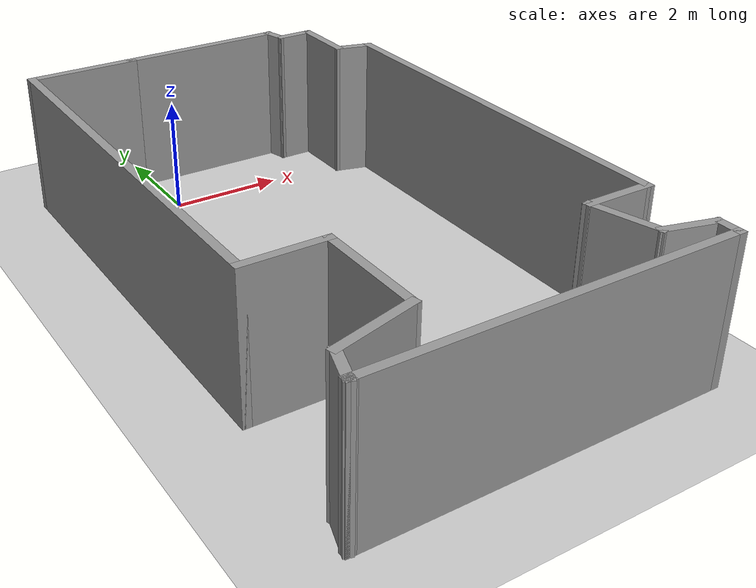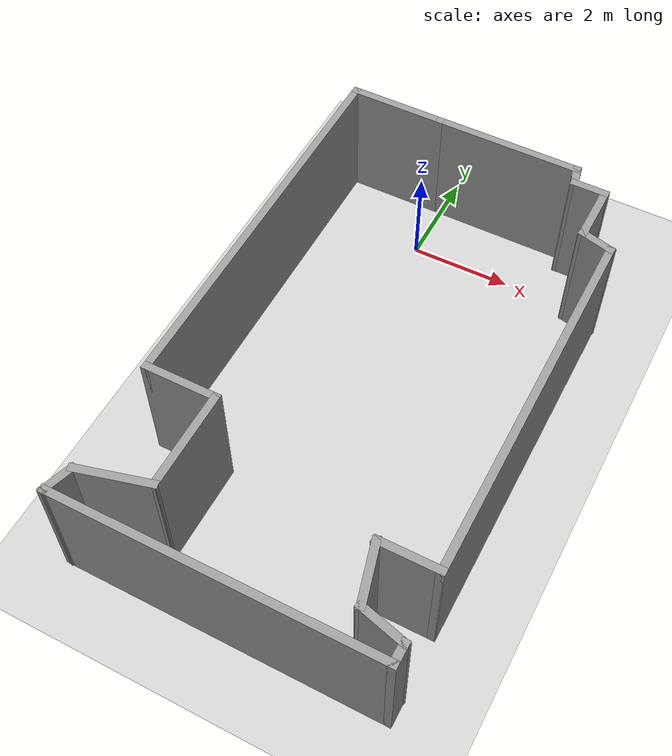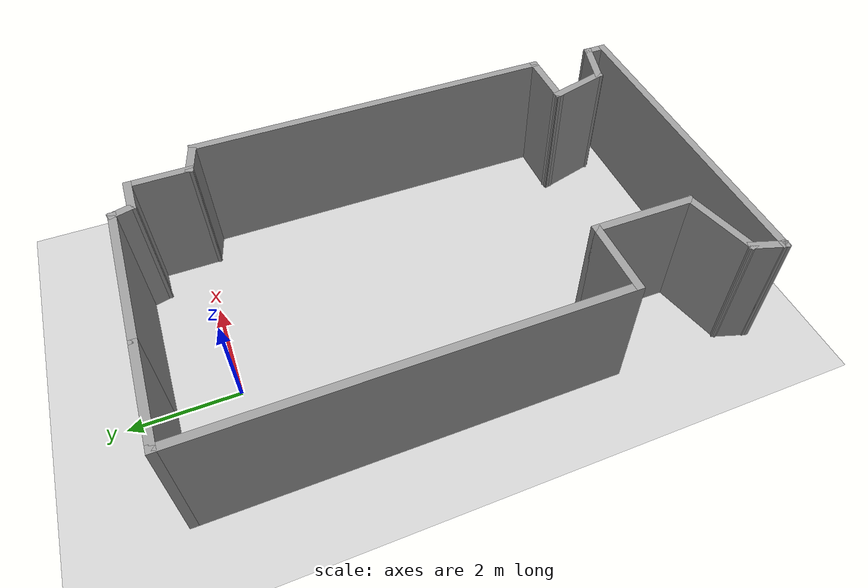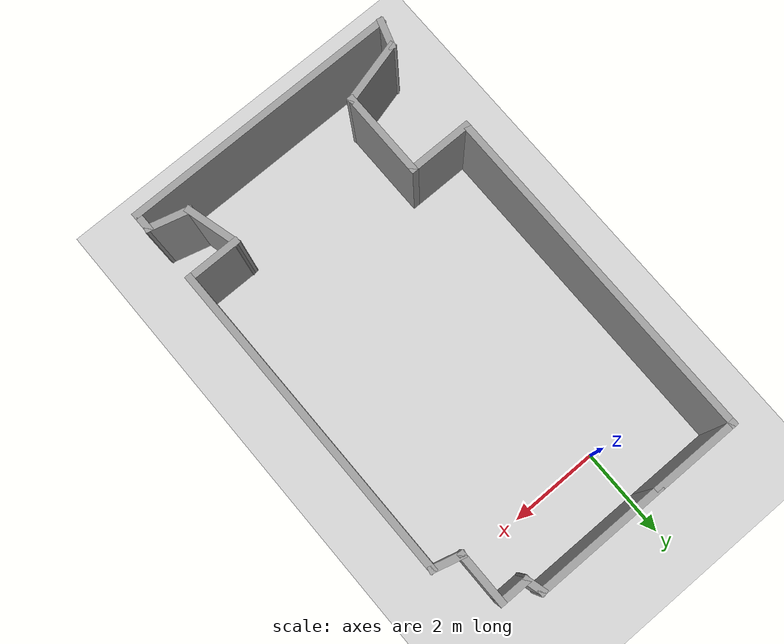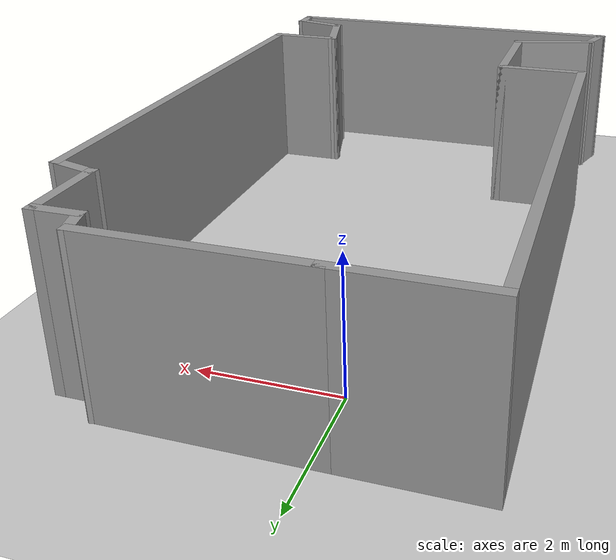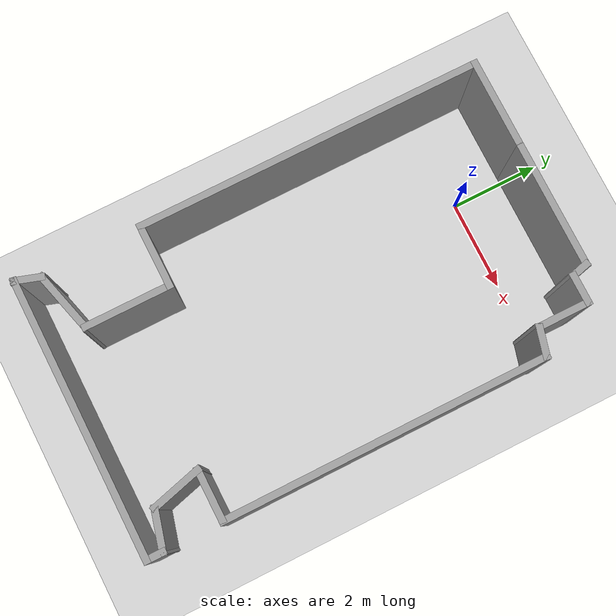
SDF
<sdf version="1.6">
 <world name="default">
  <model name="ground_plane">
   <static>1</static>
   <link name="link">
    <collision name="collision">
     <geometry><plane><normal>0 0 1</normal><size>100 100</size></plane></geometry>
     <surface>
      <contact><collide_bitmask>65535</collide_bitmask></contact>
      <friction><ode><mu>100</mu><mu2>50</mu2></ode></friction>
     </surface>
    </collision>
    <visual name="visual">
     <cast_shadows>0</cast_shadows>
     <geometry><plane><normal>0 0 1</normal><size>100 100</size></plane></geometry>
     <material>
      <script><uri>file://media/materials/scripts/gazebo.material</uri><name>Gazebo/Grey</name></script>
     </material>
    </visual>
   </link>
  </model>
  <light name="sun" type="directional">
   <pose>0 0 10 0 -0 0</pose>
   <diffuse>0.8 0.8 0.8 1</diffuse>
   <specular>0.2 0.2 0.2 1</specular>
   <attenuation>
    <range>1000</range>
    <constant>0.9</constant>
    <linear>0.01</linear>
    <quadratic>0.001</quadratic>
   </attenuation>
   <direction>-0.5 0.1 -0.9</direction>
  </light>
  <gravity>0 0 -9.8</gravity>
  <magnetic_field>6e-06 2.3e-05 -4.2e-05</magnetic_field>
  <atmosphere type="adiabatic"/>
  <physics name="default_physics" default="0" type="ode">
   <max_step_size>0.001</max_step_size>
   <real_time_factor>1</real_time_factor>
   <real_time_update_rate>1000</real_time_update_rate>
  </physics>
  <scene><ambient>0.4 0.4 0.4 1</ambient><background>0.7 0.7 0.7 1</background><shadows>1</shadows></scene>
  <audio><device>default</device></audio>
  <spherical_coordinates>
   <surface_model>EARTH_WGS84</surface_model>
   <latitude_deg>0</latitude_deg>
   <longitude_deg>0</longitude_deg>
   <elevation>0</elevation>
   <heading_deg>0</heading_deg>
  </spherical_coordinates>
  <model name="roo">
   <pose>0.873059 -3.95258 0 0 -0 0</pose>
   <link name="Wall_0">
    <collision name="Wall_0_Collision">
     <geometry><box><size>6.25 0.15 2.5</size></box></geometry>
     <pose>0 0 1.25 0 -0 0</pose>
    </collision>
    <visual name="Wall_0_Visual">
     <pose>0 0 1.25 0 -0 0</pose>
     <geometry><box><size>6.25 0.15 2.5</size></box></geometry>
     <material>
      <script><uri>file://media/materials/scripts/gazebo.material</uri><name>Gazebo/Grey</name></script>
      <ambient>1 1 1 1</ambient>
     </material>
     <meta><layer>0</layer></meta>
    </visual>
    <pose>0.001286 -5.16165 0 0 -0 0</pose>
   </link>
   <link name="Wall_1">
    <collision name="Wall_1_Collision">
     <geometry><box><size>0.5 0.15 2.5</size></box></geometry>
     <pose>0 0 1.25 0 -0 0</pose>
    </collision>
    <visual name="Wall_1_Visual">
     <pose>0 0 1.25 0 -0 0</pose>
     <geometry><box><size>0.5 0.15 2.5</size></box></geometry>
     <material>
      <script><uri>file://media/materials/scripts/gazebo.material</uri><name>Gazebo/Grey</name></script>
      <ambient>1 1 1 1</ambient>
     </material>
     <meta><layer>0</layer></meta>
    </visual>
    <pose>3.05129 -4.98665 0 0 -0 1.5708</pose>
   </link>
   <link name="Wall_10">
    <collision name="Wall_10_Collision">
     <geometry><box><size>3 0.15 2.5</size></box></geometry>
     <pose>0 0 1.25 0 -0 0</pose>
    </collision>
    <visual name="Wall_10_Visual">
     <pose>0 0 1.25 0 -0 0</pose>
     <geometry><box><size>3 0.15 2.5</size></box></geometry>
     <material>
      <script><uri>file://media/materials/scripts/gazebo.material</uri><name>Gazebo/Grey</name></script>
      <ambient>1 1 1 1</ambient>
     </material>
     <meta><layer>0</layer></meta>
    </visual>
    <pose>0.350406 5.16423 0 0 -0 3.14159</pose>
   </link>
   <link name="Wall_11">
    <collision name="Wall_11_Collision">
     <geometry><box><size>0.15 0.15 2.5</size></box></geometry>
     <pose>0 0 1.25 0 -0 0</pose>
    </collision>
    <visual name="Wall_11_Visual">
     <pose>0 0 1.25 0 -0 0</pose>
     <geometry><box><size>0.15 0.15 2.5</size></box></geometry>
     <material>
      <script><uri>file://media/materials/scripts/gazebo.material</uri><name>Gazebo/Grey</name></script>
      <ambient>1 1 1 1</ambient>
     </material>
     <meta><layer>0</layer></meta>
    </visual>
    <pose>-1.07459 5.16423 0 0 -0 0</pose>
   </link>
   <link name="Wall_12">
    <collision name="Wall_12_Collision">
     <geometry><box><size>2 0.15 2.5</size></box></geometry>
     <pose>0 0 1.25 0 -0 0</pose>
    </collision>
    <visual name="Wall_12_Visual">
     <pose>0 0 1.25 0 -0 0</pose>
     <geometry><box><size>2 0.15 2.5</size></box></geometry>
     <material>
      <script><uri>file://media/materials/scripts/gazebo.material</uri><name>Gazebo/Grey</name></script>
      <ambient>1 1 1 1</ambient>
     </material>
     <meta><layer>0</layer></meta>
    </visual>
    <pose>-1.99959 5.16423 0 0 -0 3.14159</pose>
   </link>
   <link name="Wall_13">
    <collision name="Wall_13_Collision">
     <geometry><box><size>7.75 0.15 2.5</size></box></geometry>
     <pose>0 0 1.25 0 -0 0</pose>
    </collision>
    <visual name="Wall_13_Visual">
     <pose>0 0 1.25 0 -0 0</pose>
     <geometry><box><size>7.75 0.15 2.5</size></box></geometry>
     <material>
      <script><uri>file://media/materials/scripts/gazebo.material</uri><name>Gazebo/Grey</name></script>
      <ambient>1 1 1 1</ambient>
     </material>
     <meta><layer>0</layer></meta>
    </visual>
    <pose>-2.92459 1.36423 0 0 -0 -1.5708</pose>
   </link>
   <link name="Wall_14">
    <collision name="Wall_14_Collision">
     <geometry><box><size>1.5 0.15 2.5</size></box></geometry>
     <pose>0 0 1.25 0 -0 0</pose>
    </collision>
    <visual name="Wall_14_Visual">
     <pose>0 0 1.25 0 -0 0</pose>
     <geometry><box><size>1.5 0.15 2.5</size></box></geometry>
     <material>
      <script><uri>file://media/materials/scripts/gazebo.material</uri><name>Gazebo/Grey</name></script>
      <ambient>1 1 1 1</ambient>
     </material>
     <meta><layer>0</layer></meta>
    </visual>
    <pose>-2.24959 -2.43577 0 0 -0 0</pose>
   </link>
   <link name="Wall_15">
    <collision name="Wall_15_Collision">
     <geometry><box><size>2 0.15 2.5</size></box></geometry>
     <pose>0 0 1.25 0 -0 0</pose>
    </collision>
    <visual name="Wall_15_Visual">
     <pose>0 0 1.25 0 -0 0</pose>
     <geometry><box><size>2 0.15 2.5</size></box></geometry>
     <material>
      <script><uri>file://media/materials/scripts/gazebo.material</uri><name>Gazebo/Grey</name></script>
      <ambient>1 1 1 1</ambient>
     </material>
     <meta><layer>0</layer></meta>
    </visual>
    <pose>-1.57459 -3.36077 0 0 -0 -1.5708</pose>
   </link>
   <link name="Wall_16">
    <collision name="Wall_16_Collision">
     <geometry><box><size>1.5 0.15 2.5</size></box></geometry>
     <pose>0 0 1.25 0 -0 0</pose>
    </collision>
    <visual name="Wall_16_Visual">
     <pose>0 0 1.25 0 -0 0</pose>
     <geometry><box><size>1.5 0.15 2.5</size></box></geometry>
     <material>
      <script><uri>file://media/materials/scripts/gazebo.material</uri><name>Gazebo/Grey</name></script>
      <ambient>1 1 1 1</ambient>
     </material>
     <meta><layer>0</layer></meta>
    </visual>
    <pose>-2.22659 -4.46048 0 0 -0 -2.87979</pose>
   </link>
   <link name="Wall_17">
    <collision name="Wall_17_Collision">
     <geometry><box><size>0.703278 0.15 2.5</size></box></geometry>
     <pose>0 0 1.25 0 -0 0</pose>
    </collision>
    <visual name="Wall_17_Visual">
     <pose>0 0 1.25 0 -0 0</pose>
     <geometry><box><size>0.703278 0.15 2.5</size></box></geometry>
     <material>
      <script><uri>file://media/materials/scripts/gazebo.material</uri><name>Gazebo/Grey</name></script>
      <ambient>1 1 1 1</ambient>
     </material>
     <meta><layer>0</layer></meta>
    </visual>
    <pose>-2.96365 -4.89842 0 0 -0 -1.88334</pose>
   </link>
   <link name="Wall_18">
    <collision name="Wall_18_Collision">
     <geometry><box><size>0.16 0.15 2.5</size></box></geometry>
     <pose>0 0 1.25 0 -0 0</pose>
    </collision>
    <visual name="Wall_18_Visual">
     <pose>0 0 1.25 0 -0 0</pose>
     <geometry><box><size>0.16 0.15 2.5</size></box></geometry>
     <material>
      <script><uri>file://media/materials/scripts/gazebo.material</uri><name>Gazebo/Grey</name></script>
      <ambient>1 1 1 1</ambient>
     </material>
     <meta><layer>0</layer></meta>
    </visual>
    <pose>-3.04371 -5.16165 0 0 -0 0</pose>
   </link>
   <link name="Wall_19">
    <collision name="Wall_19_Collision">
     <geometry><box><size>0.16 0.15 2.5</size></box></geometry>
     <pose>0 0 1.25 0 -0 0</pose>
    </collision>
    <visual name="Wall_19_Visual">
     <pose>0 0 1.25 0 -0 0</pose>
     <geometry><box><size>0.16 0.15 2.5</size></box></geometry>
     <material>
      <script><uri>file://media/materials/scripts/gazebo.material</uri><name>Gazebo/Grey</name></script>
      <ambient>0 0 0 1</ambient>
     </material>
     <meta><layer>0</layer></meta>
    </visual>
    <pose>-3.04371 -5.16165 0 0 -0 3.14159</pose>
   </link>
   <link name="Wall_2">
    <collision name="Wall_2_Collision">
     <geometry><box><size>1 0.15 2.5</size></box></geometry>
     <pose>0 0 1.25 0 -0 0</pose>
    </collision>
    <visual name="Wall_2_Visual">
     <pose>0 0 1.25 0 -0 0</pose>
     <geometry><box><size>1 0.15 2.5</size></box></geometry>
     <material>
      <script><uri>file://media/materials/scripts/gazebo.material</uri><name>Gazebo/Grey</name></script>
      <ambient>1 1 1 1</ambient>
     </material>
     <meta><layer>0</layer></meta>
    </visual>
    <pose>2.64077 -4.70166 0 0 -0 2.87979</pose>
   </link>
   <link name="Wall_3">
    <collision name="Wall_3_Collision">
     <geometry><box><size>1.25 0.15 2.5</size></box></geometry>
     <pose>0 0 1.25 0 -0 0</pose>
    </collision>
    <visual name="Wall_3_Visual">
     <pose>0 0 1.25 0 -0 0</pose>
     <geometry><box><size>1.25 0.15 2.5</size></box></geometry>
     <material>
      <script><uri>file://media/materials/scripts/gazebo.material</uri><name>Gazebo/Grey</name></script>
      <ambient>1 1 1 1</ambient>
     </material>
     <meta><layer>0</layer></meta>
    </visual>
    <pose>2.0879 -4.0604 0 0 -0 1.8326</pose>
   </link>
   <link name="Wall_4">
    <collision name="Wall_4_Collision">
     <geometry><box><size>1.25 0.15 2.5</size></box></geometry>
     <pose>0 0 1.25 0 -0 0</pose>
    </collision>
    <visual name="Wall_4_Visual">
     <pose>0 0 1.25 0 -0 0</pose>
     <geometry><box><size>1.25 0.15 2.5</size></box></geometry>
     <material>
      <script><uri>file://media/materials/scripts/gazebo.material</uri><name>Gazebo/Grey</name></script>
      <ambient>1 1 1 1</ambient>
     </material>
     <meta><layer>0</layer></meta>
    </visual>
    <pose>2.49555 -3.52914 0 0 -0 0</pose>
   </link>
   <link name="Wall_5">
    <collision name="Wall_5_Collision">
     <geometry><box><size>7.25 0.15 2.5</size></box></geometry>
     <pose>0 0 1.25 0 -0 0</pose>
    </collision>
    <visual name="Wall_5_Visual">
     <pose>0 0 1.25 0 -0 0</pose>
     <geometry><box><size>7.25 0.15 2.5</size></box></geometry>
     <material>
      <script><uri>file://media/materials/scripts/gazebo.material</uri><name>Gazebo/Grey</name></script>
      <ambient>1 1 1 1</ambient>
     </material>
     <meta><layer>0</layer></meta>
    </visual>
    <pose>3.04555 0.02086 0 0 -0 1.5708</pose>
   </link>
   <link name="Wall_6">
    <collision name="Wall_6_Collision">
     <geometry><box><size>0.75 0.15 2.5</size></box></geometry>
     <pose>0 0 1.25 0 -0 0</pose>
    </collision>
    <visual name="Wall_6_Visual">
     <pose>0 0 1.25 0 -0 0</pose>
     <geometry><box><size>0.75 0.15 2.5</size></box></geometry>
     <material>
      <script><uri>file://media/materials/scripts/gazebo.material</uri><name>Gazebo/Grey</name></script>
      <ambient>1 1 1 1</ambient>
     </material>
     <meta><layer>0</layer></meta>
    </visual>
    <pose>2.75577 3.64851 0 0 -0 2.87979</pose>
   </link>
   <link name="Wall_7">
    <collision name="Wall_7_Collision">
     <geometry><box><size>1.25 0.15 2.5</size></box></geometry>
     <pose>0 0 1.25 0 -0 0</pose>
    </collision>
    <visual name="Wall_7_Visual">
     <pose>0 0 1.25 0 -0 0</pose>
     <geometry><box><size>1.25 0.15 2.5</size></box></geometry>
     <material>
      <script><uri>file://media/materials/scripts/gazebo.material</uri><name>Gazebo/Grey</name></script>
      <ambient>1 1 1 1</ambient>
     </material>
     <meta><layer>0</layer></meta>
    </visual>
    <pose>2.46599 4.27615 0 0 -0 1.5708</pose>
   </link>
   <link name="Wall_8">
    <collision name="Wall_8_Collision">
     <geometry><box><size>0.75 0.15 2.5</size></box></geometry>
     <pose>0 0 1.25 0 -0 0</pose>
    </collision>
    <visual name="Wall_8_Visual">
     <pose>0 0 1.25 0 -0 0</pose>
     <geometry><box><size>0.75 0.15 2.5</size></box></geometry>
     <material>
      <script><uri>file://media/materials/scripts/gazebo.material</uri><name>Gazebo/Grey</name></script>
      <ambient>1 1 1 1</ambient>
     </material>
     <meta><layer>0</layer></meta>
    </visual>
    <pose>2.16599 4.82615 0 0 -0 3.14159</pose>
   </link>
   <link name="Wall_9">
    <collision name="Wall_9_Collision">
     <geometry><box><size>0.5 0.15 2.5</size></box></geometry>
     <pose>0 0 1.25 0 -0 0</pose>
    </collision>
    <visual name="Wall_9_Visual">
     <pose>0 0 1.25 0 -0 0</pose>
     <geometry><box><size>0.5 0.15 2.5</size></box></geometry>
     <material>
      <script><uri>file://media/materials/scripts/gazebo.material</uri><name>Gazebo/Grey</name></script>
      <ambient>1 1 1 1</ambient>
     </material>
     <meta><layer>0</layer></meta>
    </visual>
    <pose>1.8207 4.99519 0 0 -0 1.8326</pose>
   </link>
   <static>1</static>
  </model>
 </world>
</sdf>
